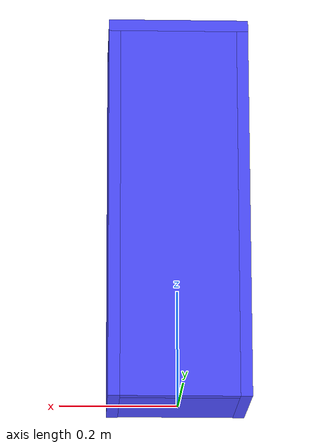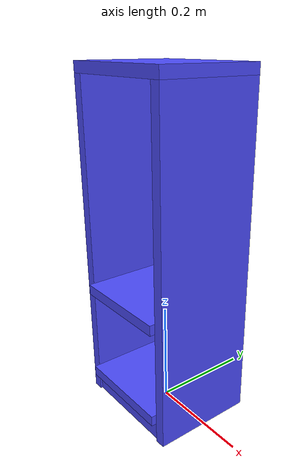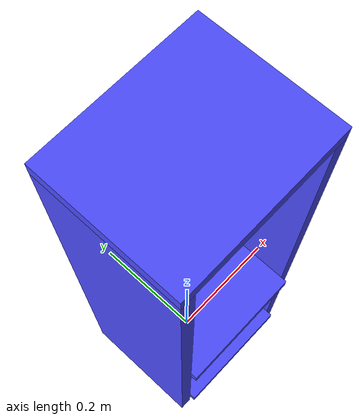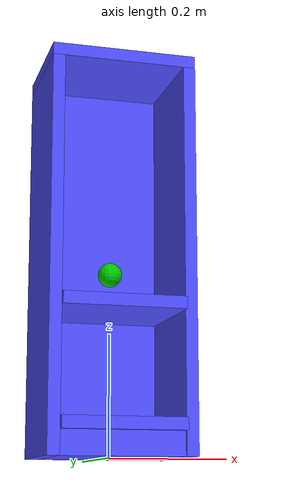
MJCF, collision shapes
<mujoco>
    <compiler angle="radian" inertiafromgeom="auto" inertiagrouprange="4 5"/>
    <asset>
        <texture name="T_shelf_wood" type="cube" file="../textures/wood1.png"/>

        <material name="shelf_col" rgba="0.3 0.3 1.0 0.5" shininess="0" specular="0"/>
        <material name="shelf_white" rgba=".85 .85 .85 1" shininess="1" reflectance=".7" specular=".5"/>
        <material name="shelf_wood" texture="T_shelf_wood" shininess="1" reflectance="1" specular=".5"/>

        <mesh file="../objects/meshes/shelf/shelf.stl" name="shelf"/>
        <mesh file="../objects/meshes/shelf/shelf_supports.stl" name="shelf_supports"/>
    </asset>
    <default>

      <default class="shelf_base">
          <joint armature="0.001" damping="2" limited="true"/>
          <geom conaffinity="0" contype="0" group="1" type="mesh"/>
          <position ctrllimited="true" ctrlrange="0 1.57"/>
          <default class="shelf_viz">
              <geom condim="4" type="mesh"/>
          </default>
          <default class="shelf_col">
              <geom conaffinity="1" condim="3" contype="0" group="4" material="shelf_col" solimp="0.99 0.99 0.01" solref="0.01 1"/>
          </default>
          <default class="block_col">
              <geom conaffinity="1" condim="3" contype="1s" group="4" material="shelf_col" solimp="0.99 0.99 0.01" solref="0.01 1"/>
          </default>
      </default>
    </default>

    <worldbody>
            <body name="shelf" childclass="shelf_base">
                <geom material="shelf_wood" mesh="shelf" pos="0 -0.015 0.24"/>
                <geom material="shelf_white" mesh="shelf_supports" pos="0 0 0.04"/>
                <geom class="shelf_col" pos="-0.11 0 0.32" size="0.01 0.1 0.32" type="box"/>
                <geom class="shelf_col" pos="0.11 0 0.32" size="0.01 0.1 0.32" type="box"/>
                <geom class="shelf_col" pos="0 0 0.65" size="0.12 0.1 0.01" type="box"/>
                <geom class="shelf_col" pos="0 -0.015 0.24" size="0.1 0.095 0.01" type="box"/>
                <geom class="shelf_col" pos="0 -0.015 0.05" size="0.1 0.095 0.01" type="box"/>
                <geom class="shelf_col" pos="0 0.09 0.32" size="0.1 0.01 0.32" type="box"/>
                <geom class="shelf_col" pos="0.0 -0.008 0.021" size="0.1 0.088 0.021" type="box"/>
                <site name="goal" pos="0 0 0.3" size="0.02" rgba="0 0.8 0 1"/>
            </body>
    </worldbody>
</mujoco>
